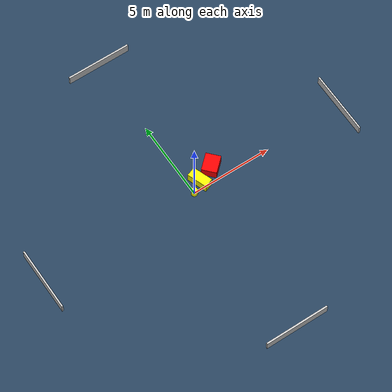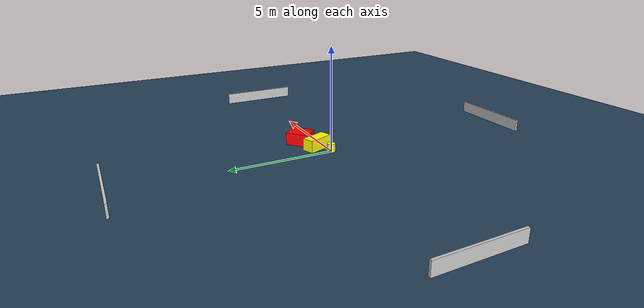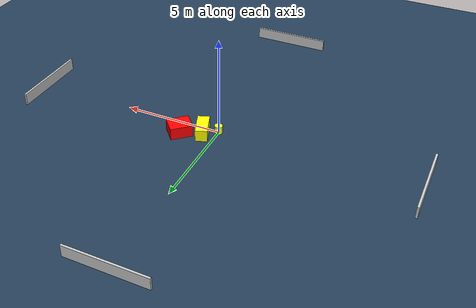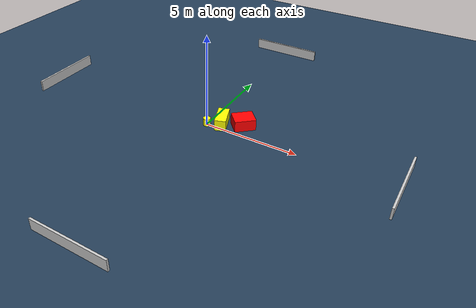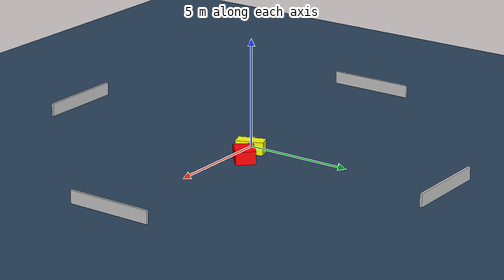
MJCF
<?xml version="1.0" ?>
<mujoco model="generated_environment">
  <option timestep="0.01" integrator="RK4" cone="elliptic"/>
  <default>
    <geom density="1"/>
  </default>
  <asset>
    <texture builtin="gradient" height="3072" name="skybox" rgb1="0.3 0.5 0.7" rgb2="0 0 0" type="skybox" width="512"/>
    <texture builtin="checker" height="300" name="groundplane" rgb1="0.2 0.3 0.4" rgb2="0.1 0.2 0.3" type="2d" width="300"/>
    <material name="groundplane" reflectance="0.2" texrepeat="5 5" texture="groundplane"/>
  </asset>
  <worldbody>
    <light dir="0 0 -1" directional="true" pos="0 0 1.5"/>
    <geom condim="3" friction="0.5 0.005 0.001" material="groundplane" name="floor" pos="0 0 0" size="0 0 0.05" type="plane"/>
    <body name="walls">
      <geom name="wall_1" condim="4" pos="-10.0 0.0 0.3" rgba="0.800000011920929 0.800000011920929 0.800000011920929 1.0" size="0.05 2.0 0.3" type="box"/>
      <geom name="wall_2" condim="4" pos="10.0 0.0 0.3" rgba="0.800000011920929 0.800000011920929 0.800000011920929 1.0" size="0.05 2.0 0.3" type="box"/>
      <geom name="wall_3" condim="4" pos="0.0 -10.0 0.3" rgba="0.800000011920929 0.800000011920929 0.800000011920929 1.0" size="2.0 0.05 0.3" type="box"/>
      <geom name="wall_4" condim="4" pos="0.0 10.0 0.3" rgba="0.800000011920929 0.800000011920929 0.800000011920929 1.0" size="2.0 0.05 0.3" type="box"/>
    </body>
    <body name="robot">
      <joint name="joint_x" type="slide" pos="0 0 0" axis="1 0 0"/>
      <joint name="joint_y" type="slide" pos="0 0 0" axis="0 1 0"/>
      <geom name="robot" type="cylinder" pos="0.0 0.0 0.2" size="0.2 0.2 0.0" mass="5.0" friction="1.0 0.005 0.0001" condim="4" rgba="1.0 1.0 0.0 1.0"/>
    </body>
    <body name="obstacle_1_movable">
      <geom name="obstacle_1_movable" condim="4" pos="0.6589262888229508 0.43217406092941585 0.3" euler="0 0 20.18631499436662" friction="0.0 0.005 0.001" rgba="1.0 1.0 0.0 1.0" size="0.2950206711992138 0.633736169414439 0.3" type="box" mass="0.1"/>
      <joint type="free"/>
    </body>
    <body name="obstacle_2_static">
      <geom name="obstacle_2_static" condim="4" pos="1.6970851872755426 0.8357208611376635 0.3" euler="0 0 312.26461339409997" friction="0.0 0.005 0.001" rgba="1.0 0.0 0.0 1.0" size="0.45483636612382683 0.557557931182727 0.3" type="box"/>
    </body>
  </worldbody>
  <actuator>
    <motor name="actuator_x" joint="joint_x" gear="1" ctrlrange="-1 1"/>
    <motor name="actuator_y" joint="joint_y" gear="1" ctrlrange="-1 1"/>
  </actuator>
</mujoco>
